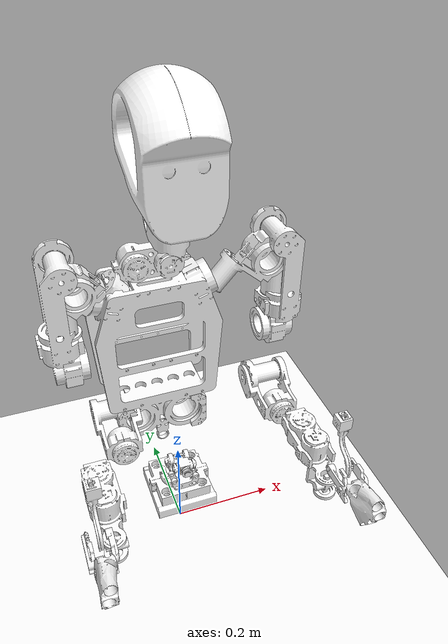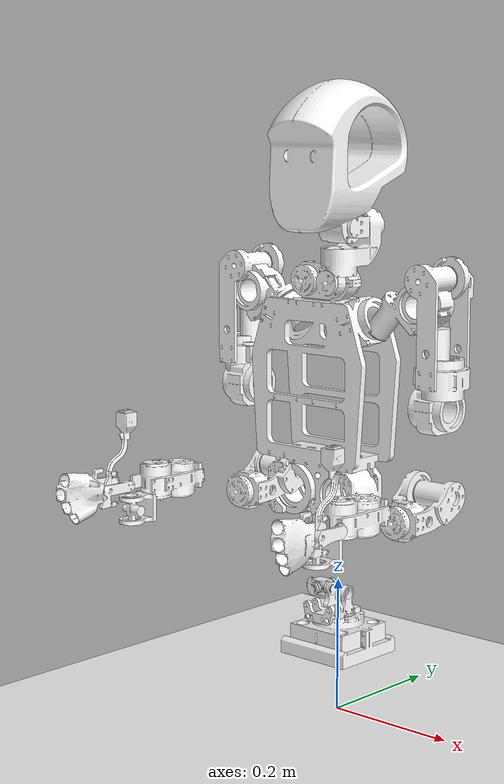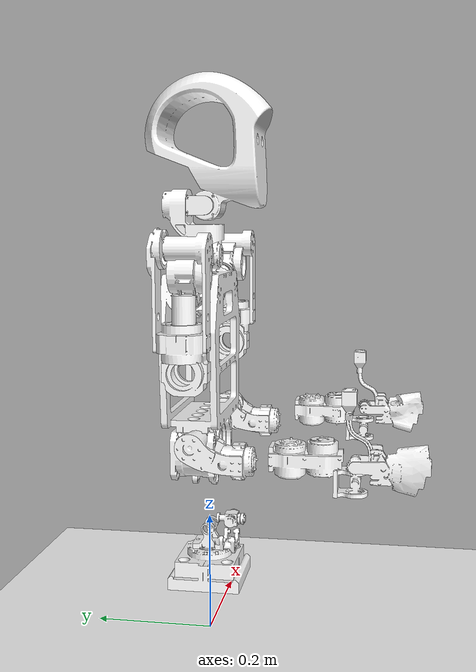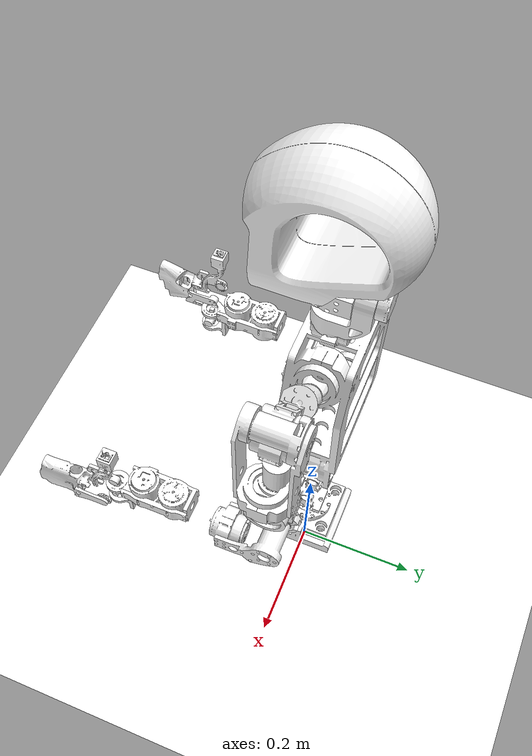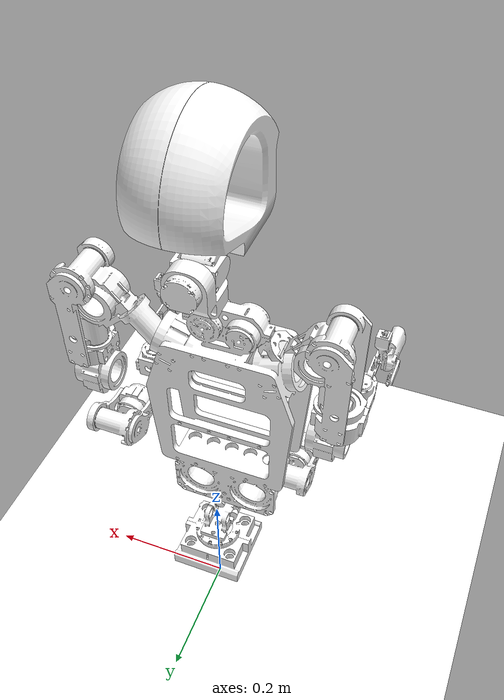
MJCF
<mujoco model="Semi_Taks_T1_sim2sim">
  <compiler angle="radian" meshdir="meshes" eulerseq="xyz"/>
  <option timestep='0.001' iterations='50' solver='PGS' gravity='0 0 -9.81'>
  </option>
  <size njmax="500" nconmax="100" />

  <default>
    <joint actuatorfrclimited="true" type="hinge"/>
    <default class="torso_motor">
      <joint damping="0.05" armature="0.01" frictionloss="0.1"/>
    </default>
    <default class="arm_motor">
      <joint damping="0.05" armature="0.01" frictionloss="0.1"/>
    </default>
    <default class="wrist_motor">
      <joint damping="0.05" armature="0.001" frictionloss="0.01"/>
    </default>
    <default class="neck_motor">
      <joint damping="0.02" armature="0.001" frictionloss="0.01"/>
    </default>
  </default>

  <asset>
    <mesh name="base_link" file="base_link.STL" />
    <mesh name="waist_yaw_link" file="waist_yaw_link.STL" />
    <mesh name="waist_roll_link" file="waist_roll_link.STL" />
    <mesh name="waist_pitch_link" file="waist_pitch_link.STL" />
    <mesh name="left_shoulder_pitch_link" file="left_shoulder_pitch_link.STL" />
    <mesh name="left_shoulder_roll_link" file="left_shoulder_roll_link.STL" />
    <mesh name="left_shoulder_yaw_link" file="left_shoulder_yaw_link.STL" />
    <mesh name="left_elbow_link" file="left_elbow_link.STL" />
    <mesh name="left_wrist_roll_link" file="left_wrist_roll_link.STL" />
    <mesh name="left_wrist_yaw_link" file="left_wrist_yaw_link.STL" />
    <mesh name="left_wrist_pitch_link" file="left_wrist_pitch_link.STL" />
    <mesh name="right_shoulder_pitch_link" file="right_shoulder_pitch_link.STL" />
    <mesh name="right_shoulder_roll_link" file="right_shoulder_roll_link.STL" />
    <mesh name="right_shoulder_yaw_link" file="right_shoulder_yaw_link.STL" />
    <mesh name="right_elbow_link" file="right_elbow_link.STL" />
    <mesh name="right_wrist_roll_link" file="right_wrist_roll_link.STL" />
    <mesh name="right_wrist_yaw_link" file="right_wrist_yaw_link.STL" />
    <mesh name="right_wrist_pitch_link" file="right_wrist_pitch_link.STL" />
    <mesh name="neck_yaw_link" file="neck_yaw_link.STL" />
    <mesh name="neck_roll_link" file="neck_roll_link.STL" />
    <mesh name="neck_pitch_link" file="neck_pitch_link.STL" />
  </asset>

  <worldbody>
    <body name="base_link" pos="0 0 0.0883" quat="0.70710678 0 0 -0.70710678">
      <site name="imu_in_base" size="0.01" pos="0.0 0.0 0.0" />
      <inertial pos="0.000209 0.000196 0.010637" quat="1.000000 -0.000046 -0.000459 0.000120" mass="3.2"
        diaginertia="0.00782171 0.00839916 0.0145816" />
      <geom type="mesh" contype="0" conaffinity="0" group="1" density="0" rgba="1.0 1.0 1.0 1"
        mesh="base_link" />
      <geom type="mesh" rgba="1.0 1.0 1.0 1" mesh="base_link" contype="2" conaffinity="1" />

      <!-- Upper Body -->
      <body name="waist_yaw_link" pos="0.0 0.0 0.058">
        <inertial pos="0.000703 0.000036 0.023511" quat="0.707107 0.707106 -0.000660 0.000661" mass="0.79"
        diaginertia="0.000424112 0.00115195 0.00139043" />
        <joint name="waist_yaw_joint" pos="0 0 0" axis="0 0 1" range="-2.618 2.618"
          actuatorfrcrange="-97 97" class="torso_motor" />
        <geom type="mesh" contype="0" conaffinity="0" group="1" density="0" rgba="1.0 1.0 1.0 1"
          mesh="waist_yaw_link" />
        <geom type="mesh" rgba="1.0 1.0 1.0 1" mesh="waist_yaw_link" contype="2" conaffinity="1" />

        <body name="waist_roll_link" pos="0.03813 3.7e-05 0.050906">
          <inertial pos="-0.036458 0.001915 0.039503" quat="-0.497668 -0.522864 -0.452622 0.523520" mass="1.56"
        diaginertia="0.00121052 0.00366195 0.00366507" />
          <joint name="waist_roll_joint" pos="0 0 0" axis="1 0 0" range="-0.52 0.52"
            actuatorfrcrange="-97 97" class="torso_motor" />
          <geom type="mesh" contype="0" conaffinity="0" group="1" density="0" rgba="1.0 1.0 1.0 1"
            mesh="waist_roll_link" />
          <geom type="mesh" rgba="1.0 1.0 1.0 1" mesh="waist_roll_link" contype="2" conaffinity="1" />

          <body name="torso_link" pos="-0.03813 -0.032925 0.079963">
            <inertial pos="-0.000218 0.028412 0.216121" quat="-0.012746 0.707391 0.013049 -0.706587" mass="2.01"
        diaginertia="0.0103593 0.031659 0.0398056" />
            <joint name="waist_pitch_joint" pos="0 0 0" axis="0 1 0" range="-0.52 0.52"
              actuatorfrcrange="-97 97" class="torso_motor" />
            <geom type="mesh" contype="0" conaffinity="0" group="1" density="0" rgba="1.0 1.0 1.0 1"
              mesh="waist_pitch_link" />
            <geom type="mesh" rgba="1.0 1.0 1.0 1" mesh="waist_pitch_link" contype="2" conaffinity="1" />

            <!-- Left Arm -->
            <body name="left_shoulder_pitch_link" pos="0.0 0.13582 0.33654"
              quat="0.9659258 0.2588190 0 0">
              <inertial pos="-0.003496 0.038568 0.000147" quat="0.942818 0.005189 0.001305 -0.333265" mass="0.24"
        diaginertia="0.000216626 0.000302215 0.000438512" />
              <joint name="left_shoulder_pitch_joint" pos="0 0 0" axis="0 1 0"
                range="-3.0892 2.6704" actuatorfrcrange="-27 27" class="arm_motor" />
              <geom type="mesh" contype="0" conaffinity="0" group="1" density="0" rgba="1.0 1.0 1.0 1"
                mesh="left_shoulder_pitch_link" />
              <geom type="mesh" rgba="1.0 1.0 1.0 1" mesh="left_shoulder_pitch_link" />

              <body name="left_shoulder_roll_link" pos="0.03476 0.0835 0.000425"
                quat="0.9659258 -0.2588190 0 0">
                <inertial pos="-0.034326 0.004104 -0.054527" quat="-0.466607 0.541513 0.529133 0.457232" mass="0.92"
        diaginertia="0.00160635 0.00174986 0.00232011" />
                <joint name="left_shoulder_roll_joint" pos="0 0 0" axis="1 0 0"
                  range="-1.5882 2.2515" actuatorfrcrange="-27 27" class="arm_motor" />
                <geom type="mesh" contype="0" conaffinity="0" group="1" density="0" rgba="1.0 1.0 1.0 1"
                  mesh="left_shoulder_roll_link" />
                <geom type="mesh" rgba="1.0 1.0 1.0 1" mesh="left_shoulder_roll_link" />

                <body name="left_shoulder_yaw_link" pos="-0.034375 0.0 -0.12">
                  <inertial pos="0.000352 -0.000067 -0.086391" quat="-0.705828 -0.040991 0.706119 -0.039023" mass="0.625"
        diaginertia="0.000836482 0.00204864 0.002069" />
                  <joint name="left_shoulder_yaw_joint" pos="0 0 0" axis="0 0 1"
                    range="-2.618 2.618" actuatorfrcrange="-27 27" class="arm_motor" />
                  <geom type="mesh" contype="0" conaffinity="0" group="1" density="0" rgba="1.0 1.0 1.0 1"
                    mesh="left_shoulder_yaw_link" />
                  <geom type="mesh" rgba="1.0 1.0 1.0 1" mesh="left_shoulder_yaw_link" contype="8" conaffinity="1" />

                  <body name="left_elbow_link" pos="0.000364 0.029113 -0.18099">
                    <inertial pos="0.060290 -0.018897 -0.005505" quat="0.997566 0.037813 -0.047139 -0.034794" mass="0.552"
        diaginertia="0.000980685 0.00143241 0.00168229" />
                    <joint name="left_elbow_joint" pos="0 0 0" axis="0 1 0"
                      range="-0.7 1.57" actuatorfrcrange="-27 27" class="arm_motor" />
                    <geom type="mesh" contype="0" conaffinity="0" group="1" density="0" rgba="1.0 1.0 1.0 1"
                      mesh="left_elbow_link" />
                    <geom type="mesh" rgba="1.0 1.0 1.0 1" mesh="left_elbow_link" contype="8" conaffinity="1" />

                    <body name="left_wrist_roll_link" pos="0.13 -0.029125 0.0">
                      <inertial pos="0.059365 -0.000127 0.000856" quat="0.709390 0.704504 -0.014627 0.015066" mass="0.508"
        diaginertia="0.000846714 0.00108933 0.00119508" />
                      <joint name="left_wrist_roll_joint" pos="0 0 0" axis="1 0 0"
                        range="-2.67 2.67" actuatorfrcrange="-7 7" class="wrist_motor" />
                      <geom type="mesh" contype="0" conaffinity="0" group="1" density="0" rgba="1.0 1.0 1.0 1"
                        mesh="left_wrist_roll_link" />
                      <geom type="mesh" rgba="1.0 1.0 1.0 1" mesh="left_wrist_roll_link" contype="8" conaffinity="1" />

                      <body name="left_wrist_yaw_link" pos="0.121 0.0 -0.0333">
                        <inertial pos="0.000001 0.001808 0.034229" quat="0.505557 -0.497530 -0.494299 -0.502538" mass="0.37"
        diaginertia="0.00015129 0.000161838 0.000185039" />
                        <joint name="left_wrist_yaw_joint" pos="0 0 0" axis="0 0 1"
                          range="-0.9 0.9" actuatorfrcrange="-7 7" class="wrist_motor" />
                        <geom type="mesh" contype="0" conaffinity="0" group="1" density="0" rgba="1.0 1.0 1.0 1"
                          mesh="left_wrist_yaw_link" />
                        <geom type="mesh" rgba="1.0 1.0 1.0 1" mesh="left_wrist_yaw_link" contype="8" conaffinity="1" />

                        <body name="left_wrist_pitch_link" pos="0.0 0.0225 0.0333">
                          <inertial pos="0.072939 -0.016146 0.006690" quat="0.743784 -0.619673 0.106828 -0.226669" mass="0.308"
        diaginertia="0.000203573 0.000360185 0.000390057"/>
                          <joint name="left_wrist_pitch_joint" pos="0 0 0" axis="0 1 0"
                            range="-0.9 0.9" actuatorfrcrange="-7 7" class="wrist_motor" />
                          <geom type="mesh" contype="0" conaffinity="0" group="1" density="0" rgba="1.0 1.0 1.0 1"
                            mesh="left_wrist_pitch_link" />
                          <geom type="mesh" rgba="1.0 1.0 1.0 1" mesh="left_wrist_pitch_link" contype="8" conaffinity="1" />
                        </body>
                      </body>
                    </body>
                  </body>
                </body>
              </body>
            </body>

            <!-- Right Arm -->
            <body name="right_shoulder_pitch_link" pos="0.0 -0.069974 0.33654"
              quat="0.9659258 -0.2588190 0 0">
              <inertial pos="-0.003496 -0.038568 0.000147" quat="0.942818 -0.005194 0.001309 0.333265" mass="0.24"
        diaginertia="0.000216626 0.000302215 0.000438512" />
              <joint name="right_shoulder_pitch_joint" pos="0 0 0" axis="0 1 0"
                range="-3.0892 2.6704" actuatorfrcrange="-27 27" class="arm_motor" />
              <geom type="mesh" contype="0" conaffinity="0" group="1" density="0" rgba="1.0 1.0 1.0 1"
                mesh="right_shoulder_pitch_link" />
              <geom type="mesh" rgba="1.0 1.0 1.0 1" mesh="right_shoulder_pitch_link" />

              <body name="right_shoulder_roll_link" pos="0.02776 -0.0835 0.000425"
                quat="0.9659258 0.2588190 0 0">
                <inertial pos="-0.027387 -0.004099 -0.054543" quat="0.538692 -0.464976 -0.459110 -0.531814" mass="0.92"
        diaginertia="0.00160664 0.00174971 0.00232021" />
                <joint name="right_shoulder_roll_joint" pos="0 0 0" axis="1 0 0"
                  range="-2.2515 1.5882" actuatorfrcrange="-27 27" class="arm_motor" />
                <geom type="mesh" contype="0" conaffinity="0" group="1" density="0" rgba="1.0 1.0 1.0 1"
                  mesh="right_shoulder_roll_link" />
                <geom type="mesh" rgba="1.0 1.0 1.0 1" mesh="right_shoulder_roll_link" />

                <body name="right_shoulder_yaw_link" pos="-0.027375 0.0 -0.12">
                  <inertial pos="0.000351 0.000061 -0.086330" quat="0.706146 0.036788 -0.706063 0.038462" mass="0.625"
        diaginertia="0.000836592 0.00204945 0.00206961" />
                  <joint name="right_shoulder_yaw_joint" pos="0 0 0" axis="0 0 1"
                    range="-2.618 2.618" actuatorfrcrange="-27 27" class="arm_motor" />
                  <geom type="mesh" contype="0" conaffinity="0" group="1" density="0" rgba="1.0 1.0 1.0 1"
                    mesh="right_shoulder_yaw_link" />
                  <geom type="mesh" rgba="1.0 1.0 1.0 1" mesh="right_shoulder_yaw_link" contype="16" conaffinity="1" />

                  <body name="right_elbow_link" pos="0.000364 0.027375 -0.18099">
                    <inertial pos="0.060609 -0.027320 -0.005391" quat="0.998910 0.001174 -0.046413 0.004845" mass="0.552"
        diaginertia="0.00103959 0.00142282 0.00173271" />
                    <joint name="right_elbow_joint" pos="0 0 0" axis="0 1 0"
                      range="-0.7 1.57" actuatorfrcrange="-27 27" class="arm_motor" />
                    <geom type="mesh" contype="0" conaffinity="0" group="1" density="0" rgba="1.0 1.0 1.0 1"
                      mesh="right_elbow_link" />
                    <geom type="mesh" rgba="1.0 1.0 1.0 1" mesh="right_elbow_link" contype="16" conaffinity="1" />

                    <body name="right_wrist_roll_link" pos="0.13 -0.027375 0.0">
                      <inertial pos="0.059348 -0.000124 0.000828" quat="0.709304 0.704564 -0.015028 0.015864" mass="0.508"
        diaginertia="0.000846771 0.00108988 0.00119553" />
                      <joint name="right_wrist_roll_joint" pos="0 0 0" axis="1 0 0"
                        range="-2.67 2.67" actuatorfrcrange="-7 7" class="wrist_motor" />
                      <geom type="mesh" contype="0" conaffinity="0" group="1" density="0" rgba="1.0 1.0 1.0 1"
                        mesh="right_wrist_roll_link" />
                      <geom type="mesh" rgba="1.0 1.0 1.0 1" mesh="right_wrist_roll_link" contype="16" conaffinity="1" />

                      <body name="right_wrist_yaw_link" pos="0.121 0.0 -0.0333">
                        <inertial pos="-0.000001 -0.001805 0.034231" quat="-0.502813 -0.494486 -0.497307 0.505320" mass="0.37"
        diaginertia="0.000151278 0.00016184 0.000185025" />
                        <joint name="right_wrist_yaw_joint" pos="0 0 0" axis="0 0 1"
                          range="-0.9 0.9" actuatorfrcrange="-7 7" class="wrist_motor" />
                        <geom type="mesh" contype="0" conaffinity="0" group="1" density="0" rgba="1.0 1.0 1.0 1"
                          mesh="right_wrist_yaw_link" />
                        <geom type="mesh" rgba="1.0 1.0 1.0 1" mesh="right_wrist_yaw_link" contype="16" conaffinity="1" />

                        <body name="right_wrist_pitch_link" pos="0.0 -0.0225 0.0333">
                          <inertial pos="0.072937 0.016146 0.006691" quat="-0.619700 0.743762 0.226665 -0.106832" mass="0.308"
        diaginertia="0.000203568 0.000360188 0.00039007"/>
                          <joint name="right_wrist_pitch_joint" pos="0 0 0" axis="0 1 0"
                            range="-0.9 0.9" actuatorfrcrange="-7 7" class="wrist_motor" />
                          <geom type="mesh" contype="0" conaffinity="0" group="1" density="0" rgba="1.0 1.0 1.0 1"
                            mesh="right_wrist_pitch_link" />
                          <geom type="mesh" rgba="1.0 1.0 1.0 1" mesh="right_wrist_pitch_link" contype="16" conaffinity="1" />
                        </body>
                      </body>
                    </body>
                  </body>
                </body>
              </body>
            </body>

            <!-- Neck -->
            <body name="neck_yaw_link" pos="0.0 0.032906 0.37165" quat="1 3.2e-05 0 0">
              <inertial pos="-0.026017 0.000004 0.044450" quat="-0.000003 0.399078 0.000064 0.916917" mass="0.4"
        diaginertia="0.000158273 0.000510001 0.000543254" />
              <joint name="neck_yaw_joint" pos="0 0 0" axis="0 0 1" range="-1.57 1.57"
                actuatorfrcrange="-3 3" class="neck_motor" />
              <geom type="mesh" contype="0" conaffinity="0" group="1" density="0" rgba="1.0 1.0 1.0 1"
                mesh="neck_yaw_link" />
              <geom type="mesh" rgba="1.0 1.0 1.0 1" mesh="neck_yaw_link" contype="4" conaffinity="1" />

              <body name="neck_roll_link" pos="-0.0719 0.0 0.0708">
                <inertial pos="0.057357 -0.000598 -0.000025" quat="-0.674875 -0.000416 0.000618 0.737931" mass="0.026"
        diaginertia="6.4839e-06 1.35416e-05 1.62635e-05" />
                <joint name="neck_roll_joint" pos="0 0 0" axis="1 0 0" range="-0.873 0.873"
                  actuatorfrcrange="-3 3" class="neck_motor" />
                <geom type="mesh" contype="0" conaffinity="0" group="1" density="0" rgba="1.0 1.0 1.0 1"
                  mesh="neck_roll_link" />
                <geom type="mesh" rgba="1.0 1.0 1.0 1" mesh="neck_roll_link" contype="4" conaffinity="1" />

                <body name="neck_pitch_link" pos="0.0719 0.02095 0.0">
                  <inertial pos="0.009305 -0.020598 0.085322" quat="0.551128 0.557629 0.439744 -0.438101" mass="0.6"
        diaginertia="0.00224315 0.00340582 0.00427196" />
                  <joint name="neck_pitch_joint" pos="0 0 0" axis="0 1 0" range="-0.873 0.873"
                    actuatorfrcrange="-3 3" class="neck_motor" />
                  <geom type="mesh" contype="0" conaffinity="0" group="1" density="0" rgba="1.0 1.0 1.0 1"
                    mesh="neck_pitch_link" />
                  <geom type="mesh" rgba="1.0 1.0 1.0 1" mesh="neck_pitch_link" contype="4" conaffinity="1" />
                </body>
              </body>
            </body>
          </body>
        </body>
      </body>
    </body>
  </worldbody>

  <actuator>
    <motor name="waist_yaw_joint" joint="waist_yaw_joint"/>
    <motor name="waist_roll_joint" joint="waist_roll_joint"/>
    <motor name="waist_pitch_joint" joint="waist_pitch_joint"/>
    <motor name="left_shoulder_pitch_joint" joint="left_shoulder_pitch_joint"/>
    <motor name="left_shoulder_roll_joint" joint="left_shoulder_roll_joint"/>
    <motor name="left_shoulder_yaw_joint" joint="left_shoulder_yaw_joint"/>
    <motor name="left_elbow_joint" joint="left_elbow_joint"/>
    <motor name="left_wrist_roll_joint" joint="left_wrist_roll_joint"/>
    <motor name="left_wrist_yaw_joint" joint="left_wrist_yaw_joint"/>
    <motor name="left_wrist_pitch_joint" joint="left_wrist_pitch_joint"/>
    <motor name="right_shoulder_pitch_joint" joint="right_shoulder_pitch_joint"/>
    <motor name="right_shoulder_roll_joint" joint="right_shoulder_roll_joint"/>
    <motor name="right_shoulder_yaw_joint" joint="right_shoulder_yaw_joint"/>
    <motor name="right_elbow_joint" joint="right_elbow_joint"/>
    <motor name="right_wrist_roll_joint" joint="right_wrist_roll_joint"/>
    <motor name="right_wrist_yaw_joint" joint="right_wrist_yaw_joint"/>
    <motor name="right_wrist_pitch_joint" joint="right_wrist_pitch_joint"/>
    <motor name="neck_yaw_joint" joint="neck_yaw_joint"/>
    <motor name="neck_roll_joint" joint="neck_roll_joint"/>
    <motor name="neck_pitch_joint" joint="neck_pitch_joint"/>
  </actuator>

  <sensor>
    <framequat name='orientation' objtype='site' noise='0.001' objname='imu_in_base'/>
    <framepos name='position' objtype='site' noise='0.001' objname='imu_in_base'/>
    <gyro name='angular-velocity' cutoff='34.9' noise='0.005' site='imu_in_base'/>
  </sensor>

  <!-- setup scene -->
  <statistic center="1.0 0.7 1.0" extent="0.8"/>
  <visual>
    <headlight diffuse=".8 .8 .8" ambient=".2 .2 .2" specular="1 1 1"/>
    <rgba haze="0.15 0.25 0.35 1"/>
    <global azimuth="-140" elevation="-20"/>
  </visual>

  <asset>
    <texture type="skybox" builtin="gradient" rgb1="1 1 1" rgb2="1 1 1" width="800" height="800"/>
    <texture type="2d" name="groundplane" builtin="checker" mark="edge" rgb1="1 1 1" rgb2="1 1 1" markrgb="0 0 0"
      width="300" height="300"/>
    <material name="groundplane" texture="groundplane" texuniform="true" texrepeat="5 5" reflectance="0"/>
  </asset>

  <worldbody>
    <geom name="floor" size="0 0 0.01" type="plane" material="groundplane" contype="1" conaffinity="0" priority="1"
      friction="1.6" condim="3"/>
    <light diffuse=".5 .5 .5" pos="0 0 5" dir="0 0 -1" castshadow="true"/>
  </worldbody>

  <keyframe>
    <key name="home"
      qpos="0 0 0 0 0 0 0 0 0 0 0 0 0 0 0 0 0 0 0 0" />
  </keyframe>
</mujoco>
